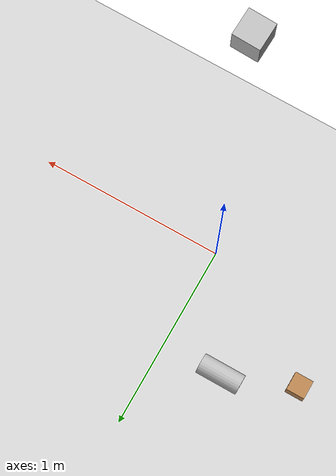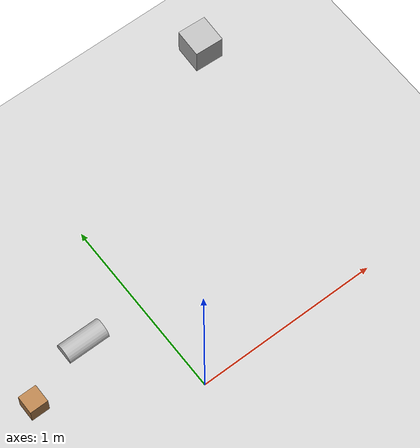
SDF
<sdf version="1.6">
 <world name="default">
  <light name="sun" type="directional">
   <pose>0 0 10 0 -0 0</pose>
   <diffuse>0.8 0.8 0.8 1</diffuse>
   <specular>0.2 0.2 0.2 1</specular>
   <attenuation>
    <range>1000</range>
    <constant>0.9</constant>
    <linear>0.01</linear>
    <quadratic>0.001</quadratic>
   </attenuation>
   <direction>-0.5 0.1 -0.9</direction>
  </light>
  <model name="ground_plane">
   <static>1</static>
   <link name="link">
    <collision name="collision">
     <geometry><plane><normal>0 0 1</normal><size>100 100</size></plane></geometry>
     <surface>
      <contact><collide_bitmask>65535</collide_bitmask></contact>
      <friction><ode><mu>100</mu><mu2>50</mu2></ode></friction>
     </surface>
    </collision>
    <visual name="visual">
     <cast_shadows>0</cast_shadows>
     <geometry><plane><normal>0 0 1</normal><size>100 100</size></plane></geometry>
     <material>
      <script><uri>file://media/materials/scripts/gazebo.material</uri><name>Gazebo/Grey</name></script>
     </material>
    </visual>
   </link>
  </model>
  <gravity>0 0 -9.8</gravity>
  <magnetic_field>6e-06 2.3e-05 -4.2e-05</magnetic_field>
  <atmosphere type="adiabatic"/>
  <physics name="default_physics" default="0" type="ode">
   <max_step_size>0.001</max_step_size>
   <real_time_factor>1</real_time_factor>
   <real_time_update_rate>1000</real_time_update_rate>
  </physics>
  <scene><ambient>0.4 0.4 0.4 1</ambient><background>0.7 0.7 0.7 1</background><shadows>1</shadows></scene>
  <spherical_coordinates>
   <surface_model>EARTH_WGS84</surface_model>
   <latitude_deg>0</latitude_deg>
   <longitude_deg>0</longitude_deg>
   <elevation>0</elevation>
   <heading_deg>0</heading_deg>
  </spherical_coordinates>
  <light name="user_point_light_0" type="point">
   <pose>0.006342 0.264447 1 0 -0 0</pose>
   <diffuse>0.5 0.5 0.5 1</diffuse>
   <specular>0.1 0.1 0.1 1</specular>
   <attenuation>
    <range>20</range>
    <constant>0.5</constant>
    <linear>0.01</linear>
    <quadratic>0.001</quadratic>
   </attenuation>
   <cast_shadows>0</cast_shadows>
   <direction>0 0 -1</direction>
  </light>
  <model name="camera">
   <pose>0 0 3 -0.042251 1.57077 3.05901</pose>
   <link name="camera::link">
    <inertial>
     <mass>0.1</mass>
     <inertia>
      <ixx>0.000166667</ixx>
      <iyy>0.000166667</iyy>
      <izz>0.000166667</izz>
      <ixy>0</ixy>
      <ixz>0</ixz>
      <iyz>0</iyz>
     </inertia>
    </inertial>
    <collision name="collision"><geometry><box><size>0.1 0.1 0.1</size></box></geometry></collision>
    <visual name="visual"><geometry><box><size>0.1 0.1 0.1</size></box></geometry></visual>
    <sensor name="camera" type="camera">
     <camera name="__default__">
      <horizontal_fov>1.047</horizontal_fov>
      <image><width>320</width><height>240</height></image>
      <clip><near>0.1</near><far>100</far></clip>
     </camera>
     <always_on>1</always_on>
     <update_rate>30</update_rate>
     <visualize>1</visualize>
    </sensor>
   </link>
   <enable_wind>1</enable_wind>
  </model>
  <model name="beer">
   <link name="link">
    <pose>0 0 0.115 0 -0 0</pose>
    <inertial>
     <mass>0.39</mass>
     <inertia><ixx>0.00058</ixx><ixy>0</ixy><ixz>0</ixz><iyy>0.00058</iyy><iyz>0</iyz><izz>0.00019</izz></inertia>
    </inertial>
    <collision name="collision">
     <geometry><cylinder><radius>0.055</radius><length>0.23</length></cylinder></geometry>
    </collision>
    <visual name="visual">
     <geometry><cylinder><radius>0.055</radius><length>0.23</length></cylinder></geometry>
     <material>
      <script>
       <uri>model://beer/materials/scripts</uri>
       <uri>model://beer/materials/textures</uri>
       <name>Beer/Diffuse</name>
      </script>
     </material>
    </visual>
   </link>
   <pose>-0.210169 0.53145 0 -1.3e-05 -1.56845 -1.3e-05</pose>
  </model>
  <model name="wood_cube_10cm">
   <link name="link">
    <pose>0 0 0.05 0 -0 0</pose>
    <inertial>
     <mass>0.5167</mass>
     <inertia>
      <ixx>0.000861167</ixx>
      <ixy>0</ixy>
      <ixz>0</ixz>
      <iyy>0.000861167</iyy>
      <iyz>0</iyz>
      <izz>0.000861167</izz>
     </inertia>
    </inertial>
    <collision name="collision">
     <geometry><box><size>0.1 0.1 0.1</size></box></geometry>
     <surface>
      <contact>
       <poissons_ratio>0.347</poissons_ratio>
       <elastic_modulus>8.8e+09</elastic_modulus>
       <ode><kp>100000</kp><kd>100</kd><max_vel>100</max_vel><min_depth>0.001</min_depth></ode>
      </contact>
      <friction>
       <torsional>
        <coefficient>1</coefficient>
        <use_patch_radius>0</use_patch_radius>
        <surface_radius>0.01</surface_radius>
       </torsional>
      </friction>
     </surface>
    </collision>
    <visual name="visual">
     <geometry><box><size>0.1 0.1 0.1</size></box></geometry>
     <material>
      <script><uri>file://media/materials/scripts/gazebo.material</uri><name>Gazebo/Wood</name></script>
     </material>
    </visual>
   </link>
   <pose>-0.7 0.4 0 0 0 -0.000456</pose>
  </model>
 </world>
</sdf>
